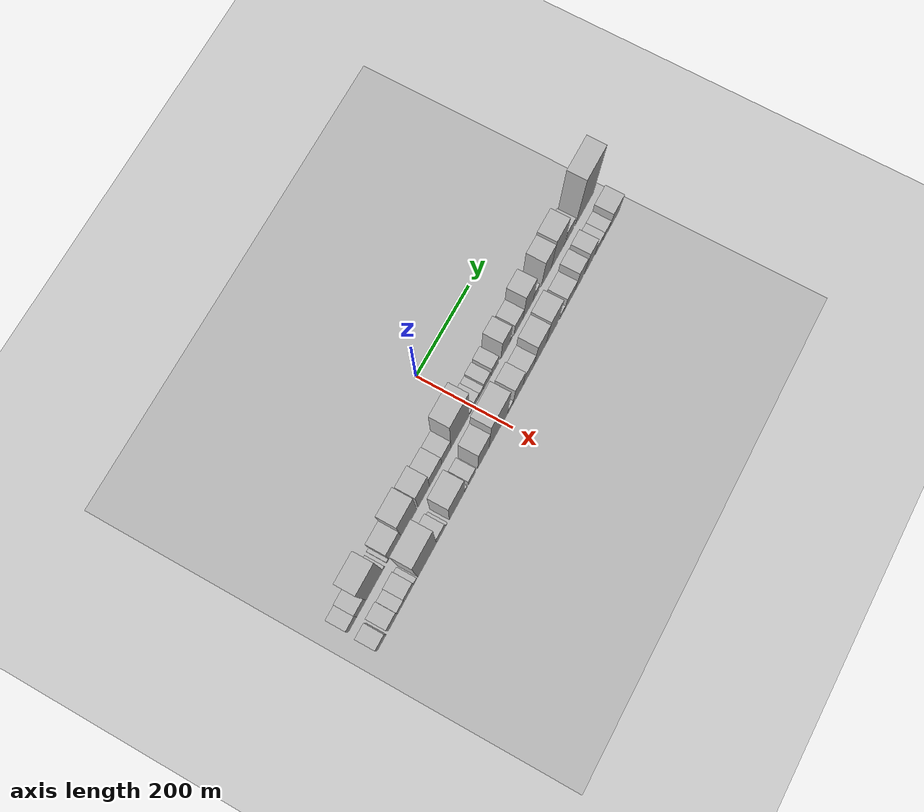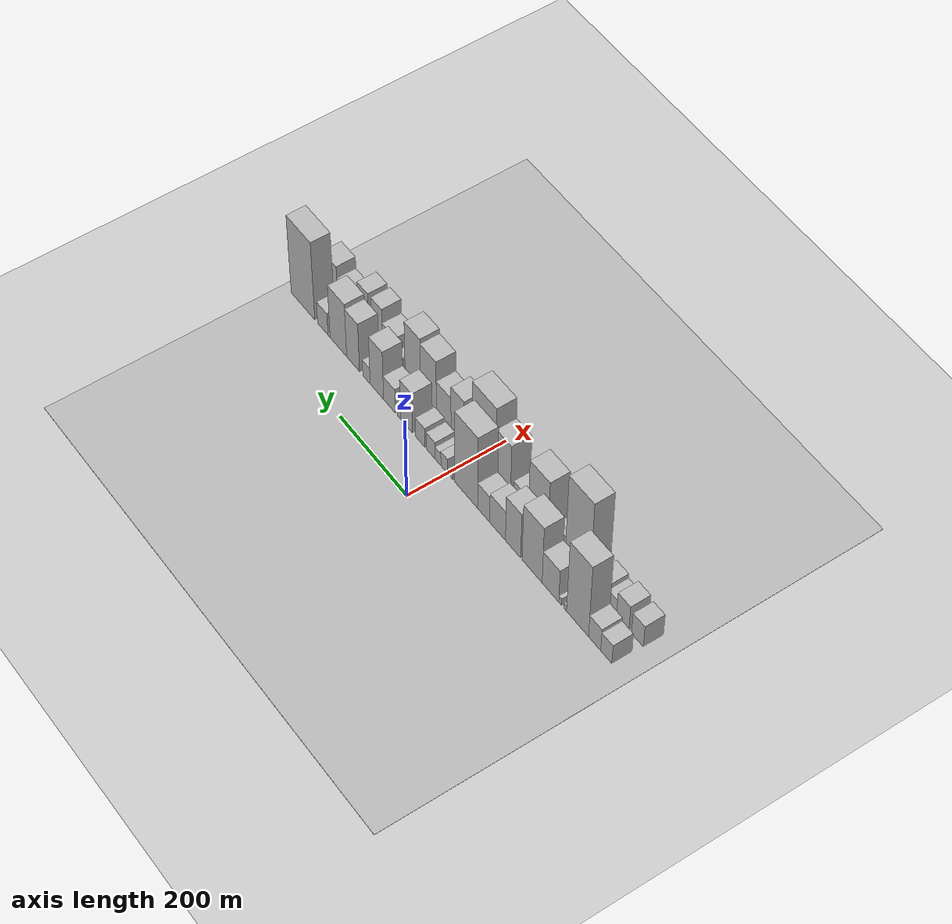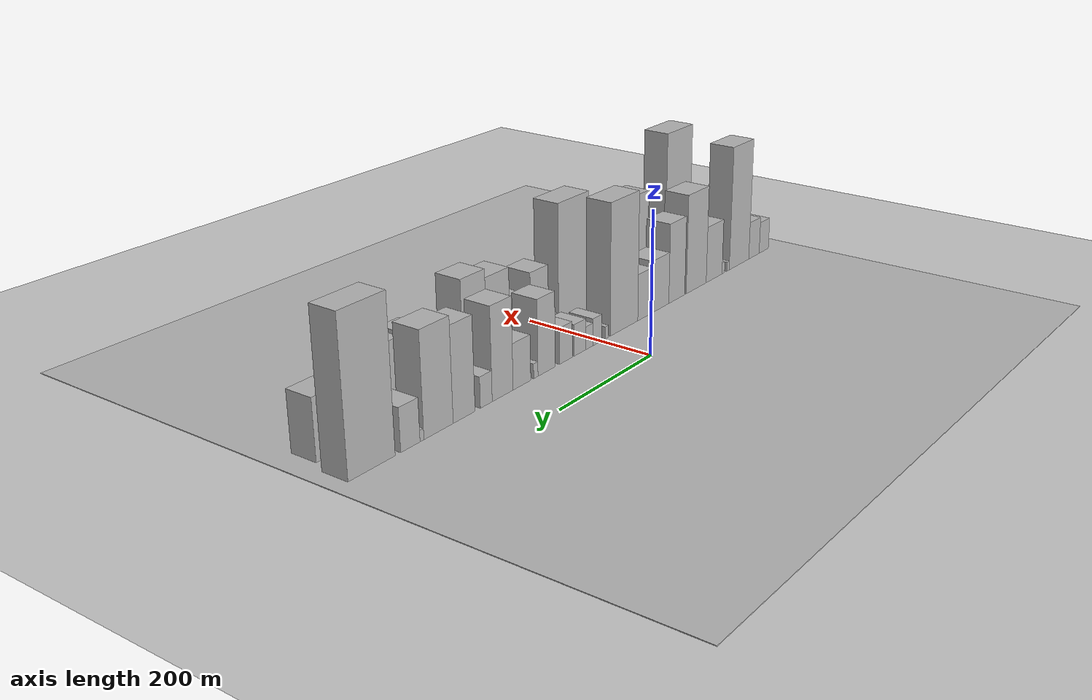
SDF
<sdf version="1.6">
 <world name="default">
  <include><name>ground_plane_1</name><uri>model://HANNAS_ground_plane</uri></include>
  <include>
   <name>ground_plane_2</name>
   <uri>model://HANNAS_ground_plane</uri>
   <pose>100 0 0  0 0 0</pose>
  </include>
  <model name="building_1">
   <static>1</static>
   <pose>100.0000 -442.2774 0 0.000000 0.000000 0.000000</pose>
   <link name="link">
    <pose>0 0 25.50 0 0 0</pose>
    <collision name="collision"><geometry><box><size>40.0000 29.4452 51.0000</size></box></geometry></collision>
    <visual name="visual">
     <cast_shadows>0</cast_shadows>
     <geometry><box><size>40.0000 29.4452 51.0000</size></box></geometry>
     <material>
      <script>
       <uri>model://HANNAS_wall/materials/scripts</uri>
       <uri>model://HANNAS_wall/materials/textures</uri>
       <name>vrc/HANNAS_wall</name>
      </script>
     </material>
    </visual>
   </link>
  </model>
  <model name="building_2">
   <static>1</static>
   <pose>100.0000 -411.2501 0 0.000000 0.000000 0.000000</pose>
   <link name="link">
    <pose>0 0 30.00 0 0 0</pose>
    <collision name="collision"><geometry><box><size>40.0000 32.6093 60.0000</size></box></geometry></collision>
    <visual name="visual">
     <cast_shadows>0</cast_shadows>
     <geometry><box><size>40.0000 32.6093 60.0000</size></box></geometry>
     <material>
      <script>
       <uri>model://HANNAS_wall/materials/scripts</uri>
       <uri>model://HANNAS_wall/materials/textures</uri>
       <name>vrc/HANNAS_wall</name>
      </script>
     </material>
    </visual>
   </link>
  </model>
  <model name="building_3">
   <static>1</static>
   <pose>100.0000 -365.2825 0 0.000000 0.000000 0.000000</pose>
   <link name="link">
    <pose>0 0 96.00 0 0 0</pose>
    <collision name="collision"><geometry><box><size>40.0000 59.3258 192.0000</size></box></geometry></collision>
    <visual name="visual">
     <cast_shadows>0</cast_shadows>
     <geometry><box><size>40.0000 59.3258 192.0000</size></box></geometry>
     <material>
      <script>
       <uri>model://HANNAS_wall/materials/scripts</uri>
       <uri>model://HANNAS_wall/materials/textures</uri>
       <name>vrc/HANNAS_wall</name>
      </script>
     </material>
    </visual>
   </link>
  </model>
  <model name="building_4">
   <static>1</static>
   <pose>100.0000 -332.2218 0 0.000000 0.000000 0.000000</pose>
   <link name="link">
    <pose>0 0 7.50 0 0 0</pose>
    <collision name="collision"><geometry><box><size>40.0000 6.7956 15.0000</size></box></geometry></collision>
    <visual name="visual">
     <cast_shadows>0</cast_shadows>
     <geometry><box><size>40.0000 6.7956 15.0000</size></box></geometry>
     <material>
      <script>
       <uri>model://HANNAS_wall/materials/scripts</uri>
       <uri>model://HANNAS_wall/materials/textures</uri>
       <name>vrc/HANNAS_wall</name>
      </script>
     </material>
    </visual>
   </link>
  </model>
  <model name="building_5">
   <static>1</static>
   <pose>100.0000 -318.0730 0 0.000000 0.000000 0.000000</pose>
   <link name="link">
    <pose>0 0 9.00 0 0 0</pose>
    <collision name="collision"><geometry><box><size>40.0000 7.5020 18.0000</size></box></geometry></collision>
    <visual name="visual">
     <cast_shadows>0</cast_shadows>
     <geometry><box><size>40.0000 7.5020 18.0000</size></box></geometry>
     <material>
      <script>
       <uri>model://HANNAS_wall/materials/scripts</uri>
       <uri>model://HANNAS_wall/materials/textures</uri>
       <name>vrc/HANNAS_wall</name>
      </script>
     </material>
    </visual>
   </link>
  </model>
  <model name="building_6">
   <static>1</static>
   <pose>100.0000 -291.5040 0 0.000000 0.000000 0.000000</pose>
   <link name="link">
    <pose>0 0 43.50 0 0 0</pose>
    <collision name="collision"><geometry><box><size>40.0000 45.6358 87.0000</size></box></geometry></collision>
    <visual name="visual">
     <cast_shadows>0</cast_shadows>
     <geometry><box><size>40.0000 45.6358 87.0000</size></box></geometry>
     <material>
      <script>
       <uri>model://HANNAS_wall/materials/scripts</uri>
       <uri>model://HANNAS_wall/materials/textures</uri>
       <name>vrc/HANNAS_wall</name>
      </script>
     </material>
    </visual>
   </link>
  </model>
  <model name="building_7">
   <static>1</static>
   <pose>100.0000 -240.9183 0 0.000000 0.000000 0.000000</pose>
   <link name="link">
    <pose>0 0 75.00 0 0 0</pose>
    <collision name="collision"><geometry><box><size>40.0000 55.5356 150.0000</size></box></geometry></collision>
    <visual name="visual">
     <cast_shadows>0</cast_shadows>
     <geometry><box><size>40.0000 55.5356 150.0000</size></box></geometry>
     <material>
      <script>
       <uri>model://HANNAS_wall/materials/scripts</uri>
       <uri>model://HANNAS_wall/materials/textures</uri>
       <name>vrc/HANNAS_wall</name>
      </script>
     </material>
    </visual>
   </link>
  </model>
  <model name="building_8">
   <static>1</static>
   <pose>100.0000 -187.8410 0 0.000000 0.000000 0.000000</pose>
   <link name="link">
    <pose>0 0 60.00 0 0 0</pose>
    <collision name="collision"><geometry><box><size>40.0000 42.6190 120.0000</size></box></geometry></collision>
    <visual name="visual">
     <cast_shadows>0</cast_shadows>
     <geometry><box><size>40.0000 42.6190 120.0000</size></box></geometry>
     <material>
      <script>
       <uri>model://HANNAS_wall/materials/scripts</uri>
       <uri>model://HANNAS_wall/materials/textures</uri>
       <name>vrc/HANNAS_wall</name>
      </script>
     </material>
    </visual>
   </link>
  </model>
  <model name="building_9">
   <static>1</static>
   <pose>100.0000 -144.2363 0 0.000000 0.000000 0.000000</pose>
   <link name="link">
    <pose>0 0 39.00 0 0 0</pose>
    <collision name="collision"><geometry><box><size>40.0000 44.5905 78.0000</size></box></geometry></collision>
    <visual name="visual">
     <cast_shadows>0</cast_shadows>
     <geometry><box><size>40.0000 44.5905 78.0000</size></box></geometry>
     <material>
      <script>
       <uri>model://HANNAS_wall/materials/scripts</uri>
       <uri>model://HANNAS_wall/materials/textures</uri>
       <name>vrc/HANNAS_wall</name>
      </script>
     </material>
    </visual>
   </link>
  </model>
  <model name="building_10">
   <static>1</static>
   <pose>100.0000 -104.6108 0 0.000000 0.000000 0.000000</pose>
   <link name="link">
    <pose>0 0 34.50 0 0 0</pose>
    <collision name="collision"><geometry><box><size>40.0000 34.6603 69.0000</size></box></geometry></collision>
    <visual name="visual">
     <cast_shadows>0</cast_shadows>
     <geometry><box><size>40.0000 34.6603 69.0000</size></box></geometry>
     <material>
      <script>
       <uri>model://HANNAS_wall/materials/scripts</uri>
       <uri>model://HANNAS_wall/materials/textures</uri>
       <name>vrc/HANNAS_wall</name>
      </script>
     </material>
    </visual>
   </link>
  </model>
  <model name="building_11">
   <static>1</static>
   <pose>100.0000 -54.0265 0 0.000000 0.000000 0.000000</pose>
   <link name="link">
    <pose>0 0 94.50 0 0 0</pose>
    <collision name="collision"><geometry><box><size>40.0000 66.5083 189.0000</size></box></geometry></collision>
    <visual name="visual">
     <cast_shadows>0</cast_shadows>
     <geometry><box><size>40.0000 66.5083 189.0000</size></box></geometry>
     <material>
      <script>
       <uri>model://HANNAS_wall/materials/scripts</uri>
       <uri>model://HANNAS_wall/materials/textures</uri>
       <name>vrc/HANNAS_wall</name>
      </script>
     </material>
    </visual>
   </link>
  </model>
  <model name="building_12">
   <static>1</static>
   <pose>100.0000 -12.9108 0 0.000000 0.000000 0.000000</pose>
   <link name="link">
    <pose>0 0 9.00 0 0 0</pose>
    <collision name="collision"><geometry><box><size>40.0000 7.7230 18.0000</size></box></geometry></collision>
    <visual name="visual">
     <cast_shadows>0</cast_shadows>
     <geometry><box><size>40.0000 7.7230 18.0000</size></box></geometry>
     <material>
      <script>
       <uri>model://HANNAS_wall/materials/scripts</uri>
       <uri>model://HANNAS_wall/materials/textures</uri>
       <name>vrc/HANNAS_wall</name>
      </script>
     </material>
    </visual>
   </link>
  </model>
  <model name="building_13">
   <static>1</static>
   <pose>100.0000 8.8898 0 0.000000 0.000000 0.000000</pose>
   <link name="link">
    <pose>0 0 19.50 0 0 0</pose>
    <collision name="collision"><geometry><box><size>40.0000 19.8781 39.0000</size></box></geometry></collision>
    <visual name="visual">
     <cast_shadows>0</cast_shadows>
     <geometry><box><size>40.0000 19.8781 39.0000</size></box></geometry>
     <material>
      <script>
       <uri>model://HANNAS_wall/materials/scripts</uri>
       <uri>model://HANNAS_wall/materials/textures</uri>
       <name>vrc/HANNAS_wall</name>
      </script>
     </material>
    </visual>
   </link>
  </model>
  <model name="building_14">
   <static>1</static>
   <pose>100.0000 27.2076 0 0.000000 0.000000 0.000000</pose>
   <link name="link">
    <pose>0 0 16.50 0 0 0</pose>
    <collision name="collision"><geometry><box><size>40.0000 16.7574 33.0000</size></box></geometry></collision>
    <visual name="visual">
     <cast_shadows>0</cast_shadows>
     <geometry><box><size>40.0000 16.7574 33.0000</size></box></geometry>
     <material>
      <script>
       <uri>model://HANNAS_wall/materials/scripts</uri>
       <uri>model://HANNAS_wall/materials/textures</uri>
       <name>vrc/HANNAS_wall</name>
      </script>
     </material>
    </visual>
   </link>
  </model>
  <model name="building_15">
   <static>1</static>
   <pose>100.0000 48.6235 0 0.000000 0.000000 0.000000</pose>
   <link name="link">
    <pose>0 0 22.50 0 0 0</pose>
    <collision name="collision"><geometry><box><size>40.0000 26.0744 45.0000</size></box></geometry></collision>
    <visual name="visual">
     <cast_shadows>0</cast_shadows>
     <geometry><box><size>40.0000 26.0744 45.0000</size></box></geometry>
     <material>
      <script>
       <uri>model://HANNAS_wall/materials/scripts</uri>
       <uri>model://HANNAS_wall/materials/textures</uri>
       <name>vrc/HANNAS_wall</name>
      </script>
     </material>
    </visual>
   </link>
  </model>
  <model name="building_16">
   <static>1</static>
   <pose>100.0000 79.5905 0 0.000000 0.000000 0.000000</pose>
   <link name="link">
    <pose>0 0 25.50 0 0 0</pose>
    <collision name="collision"><geometry><box><size>40.0000 27.8595 51.0000</size></box></geometry></collision>
    <visual name="visual">
     <cast_shadows>0</cast_shadows>
     <geometry><box><size>40.0000 27.8595 51.0000</size></box></geometry>
     <material>
      <script>
       <uri>model://HANNAS_wall/materials/scripts</uri>
       <uri>model://HANNAS_wall/materials/textures</uri>
       <name>vrc/HANNAS_wall</name>
      </script>
     </material>
    </visual>
   </link>
  </model>
  <model name="building_17">
   <static>1</static>
   <pose>100.0000 120.6960 0 0.000000 0.000000 0.000000</pose>
   <link name="link">
    <pose>0 0 52.50 0 0 0</pose>
    <collision name="collision"><geometry><box><size>40.0000 36.3516 105.0000</size></box></geometry></collision>
    <visual name="visual">
     <cast_shadows>0</cast_shadows>
     <geometry><box><size>40.0000 36.3516 105.0000</size></box></geometry>
     <material>
      <script>
       <uri>model://HANNAS_wall/materials/scripts</uri>
       <uri>model://HANNAS_wall/materials/textures</uri>
       <name>vrc/HANNAS_wall</name>
      </script>
     </material>
    </visual>
   </link>
  </model>
  <model name="building_18">
   <static>1</static>
   <pose>100.0000 143.3146 0 0.000000 0.000000 0.000000</pose>
   <link name="link">
    <pose>0 0 10.50 0 0 0</pose>
    <collision name="collision"><geometry><box><size>40.0000 8.8856 21.0000</size></box></geometry></collision>
    <visual name="visual">
     <cast_shadows>0</cast_shadows>
     <geometry><box><size>40.0000 8.8856 21.0000</size></box></geometry>
     <material>
      <script>
       <uri>model://HANNAS_wall/materials/scripts</uri>
       <uri>model://HANNAS_wall/materials/textures</uri>
       <name>vrc/HANNAS_wall</name>
      </script>
     </material>
    </visual>
   </link>
  </model>
  <model name="building_19">
   <static>1</static>
   <pose>100.0000 171.5417 0 0.000000 0.000000 0.000000</pose>
   <link name="link">
    <pose>0 0 31.50 0 0 0</pose>
    <collision name="collision"><geometry><box><size>40.0000 35.5687 63.0000</size></box></geometry></collision>
    <visual name="visual">
     <cast_shadows>0</cast_shadows>
     <geometry><box><size>40.0000 35.5687 63.0000</size></box></geometry>
     <material>
      <script>
       <uri>model://HANNAS_wall/materials/scripts</uri>
       <uri>model://HANNAS_wall/materials/textures</uri>
       <name>vrc/HANNAS_wall</name>
      </script>
     </material>
    </visual>
   </link>
  </model>
  <model name="building_20">
   <static>1</static>
   <pose>100.0000 209.6846 0 0.000000 0.000000 0.000000</pose>
   <link name="link">
    <pose>0 0 63.00 0 0 0</pose>
    <collision name="collision"><geometry><box><size>40.0000 40.7171 126.0000</size></box></geometry></collision>
    <visual name="visual">
     <cast_shadows>0</cast_shadows>
     <geometry><box><size>40.0000 40.7171 126.0000</size></box></geometry>
     <material>
      <script>
       <uri>model://HANNAS_wall/materials/scripts</uri>
       <uri>model://HANNAS_wall/materials/textures</uri>
       <name>vrc/HANNAS_wall</name>
      </script>
     </material>
    </visual>
   </link>
  </model>
  <model name="building_21">
   <static>1</static>
   <pose>100.0000 241.2630 0 0.000000 0.000000 0.000000</pose>
   <link name="link">
    <pose>0 0 21.00 0 0 0</pose>
    <collision name="collision"><geometry><box><size>40.0000 22.4398 42.0000</size></box></geometry></collision>
    <visual name="visual">
     <cast_shadows>0</cast_shadows>
     <geometry><box><size>40.0000 22.4398 42.0000</size></box></geometry>
     <material>
      <script>
       <uri>model://HANNAS_wall/materials/scripts</uri>
       <uri>model://HANNAS_wall/materials/textures</uri>
       <name>vrc/HANNAS_wall</name>
      </script>
     </material>
    </visual>
   </link>
  </model>
  <model name="building_22">
   <static>1</static>
   <pose>100.0000 282.4394 0 0.000000 0.000000 0.000000</pose>
   <link name="link">
    <pose>0 0 63.00 0 0 0</pose>
    <collision name="collision"><geometry><box><size>40.0000 39.9129 126.0000</size></box></geometry></collision>
    <visual name="visual">
     <cast_shadows>0</cast_shadows>
     <geometry><box><size>40.0000 39.9129 126.0000</size></box></geometry>
     <material>
      <script>
       <uri>model://HANNAS_wall/materials/scripts</uri>
       <uri>model://HANNAS_wall/materials/textures</uri>
       <name>vrc/HANNAS_wall</name>
      </script>
     </material>
    </visual>
   </link>
  </model>
  <model name="building_23">
   <static>1</static>
   <pose>100.0000 328.1053 0 0.000000 0.000000 0.000000</pose>
   <link name="link">
    <pose>0 0 69.00 0 0 0</pose>
    <collision name="collision"><geometry><box><size>40.0000 51.4190 138.0000</size></box></geometry></collision>
    <visual name="visual">
     <cast_shadows>0</cast_shadows>
     <geometry><box><size>40.0000 51.4190 138.0000</size></box></geometry>
     <material>
      <script>
       <uri>model://HANNAS_wall/materials/scripts</uri>
       <uri>model://HANNAS_wall/materials/textures</uri>
       <name>vrc/HANNAS_wall</name>
      </script>
     </material>
    </visual>
   </link>
  </model>
  <model name="building_24">
   <static>1</static>
   <pose>100.0000 357.1267 0 0.000000 0.000000 0.000000</pose>
   <link name="link">
    <pose>0 0 7.50 0 0 0</pose>
    <collision name="collision"><geometry><box><size>40.0000 6.6239 15.0000</size></box></geometry></collision>
    <visual name="visual">
     <cast_shadows>0</cast_shadows>
     <geometry><box><size>40.0000 6.6239 15.0000</size></box></geometry>
     <material>
      <script>
       <uri>model://HANNAS_wall/materials/scripts</uri>
       <uri>model://HANNAS_wall/materials/textures</uri>
       <name>vrc/HANNAS_wall</name>
      </script>
     </material>
    </visual>
   </link>
  </model>
  <model name="building_25">
   <static>1</static>
   <pose>100.0000 376.6841 0 0.000000 0.000000 0.000000</pose>
   <link name="link">
    <pose>0 0 28.50 0 0 0</pose>
    <collision name="collision"><geometry><box><size>40.0000 32.4909 57.0000</size></box></geometry></collision>
    <visual name="visual">
     <cast_shadows>0</cast_shadows>
     <geometry><box><size>40.0000 32.4909 57.0000</size></box></geometry>
     <material>
      <script>
       <uri>model://HANNAS_wall/materials/scripts</uri>
       <uri>model://HANNAS_wall/materials/textures</uri>
       <name>vrc/HANNAS_wall</name>
      </script>
     </material>
    </visual>
   </link>
  </model>
  <model name="building_26">
   <static>1</static>
   <pose>100.0000 439.3706 0 0.000000 0.000000 0.000000</pose>
   <link name="link">
    <pose>0 0 100.50 0 0 0</pose>
    <collision name="collision"><geometry><box><size>40.0000 74.8822 201.0000</size></box></geometry></collision>
    <visual name="visual">
     <cast_shadows>0</cast_shadows>
     <geometry><box><size>40.0000 74.8822 201.0000</size></box></geometry>
     <material>
      <script>
       <uri>model://HANNAS_wall/materials/scripts</uri>
       <uri>model://HANNAS_wall/materials/textures</uri>
       <name>vrc/HANNAS_wall</name>
      </script>
     </material>
    </visual>
   </link>
  </model>
  <model name="building_27">
   <static>1</static>
   <pose>160.0000 -444.4021 0 0.000000 0.000000 0.000000</pose>
   <link name="link">
    <pose>0 0 28.50 0 0 0</pose>
    <collision name="collision"><geometry><box><size>40.0000 31.1958 57.0000</size></box></geometry></collision>
    <visual name="visual">
     <cast_shadows>0</cast_shadows>
     <geometry><box><size>40.0000 31.1958 57.0000</size></box></geometry>
     <material>
      <script>
       <uri>model://HANNAS_wall/materials/scripts</uri>
       <uri>model://HANNAS_wall/materials/textures</uri>
       <name>vrc/HANNAS_wall</name>
      </script>
     </material>
    </visual>
   </link>
  </model>
  <model name="building_28">
   <static>1</static>
   <pose>160.0000 -405.2293 0 0.000000 0.000000 0.000000</pose>
   <link name="link">
    <pose>0 0 33.00 0 0 0</pose>
    <collision name="collision"><geometry><box><size>40.0000 33.1497 66.0000</size></box></geometry></collision>
    <visual name="visual">
     <cast_shadows>0</cast_shadows>
     <geometry><box><size>40.0000 33.1497 66.0000</size></box></geometry>
     <material>
      <script>
       <uri>model://HANNAS_wall/materials/scripts</uri>
       <uri>model://HANNAS_wall/materials/textures</uri>
       <name>vrc/HANNAS_wall</name>
      </script>
     </material>
    </visual>
   </link>
  </model>
  <model name="building_29">
   <static>1</static>
   <pose>160.0000 -376.4610 0 0.000000 0.000000 0.000000</pose>
   <link name="link">
    <pose>0 0 22.50 0 0 0</pose>
    <collision name="collision"><geometry><box><size>40.0000 24.3870 45.0000</size></box></geometry></collision>
    <visual name="visual">
     <cast_shadows>0</cast_shadows>
     <geometry><box><size>40.0000 24.3870 45.0000</size></box></geometry>
     <material>
      <script>
       <uri>model://HANNAS_wall/materials/scripts</uri>
       <uri>model://HANNAS_wall/materials/textures</uri>
       <name>vrc/HANNAS_wall</name>
      </script>
     </material>
    </visual>
   </link>
  </model>
  <model name="building_30">
   <static>1</static>
   <pose>160.0000 -347.7312 0 0.000000 0.000000 0.000000</pose>
   <link name="link">
    <pose>0 0 28.50 0 0 0</pose>
    <collision name="collision"><geometry><box><size>40.0000 33.0727 57.0000</size></box></geometry></collision>
    <visual name="visual">
     <cast_shadows>0</cast_shadows>
     <geometry><box><size>40.0000 33.0727 57.0000</size></box></geometry>
     <material>
      <script>
       <uri>model://HANNAS_wall/materials/scripts</uri>
       <uri>model://HANNAS_wall/materials/textures</uri>
       <name>vrc/HANNAS_wall</name>
      </script>
     </material>
    </visual>
   </link>
  </model>
  <model name="building_31">
   <static>1</static>
   <pose>160.0000 -325.4053 0 0.000000 0.000000 0.000000</pose>
   <link name="link">
    <pose>0 0 12.00 0 0 0</pose>
    <collision name="collision"><geometry><box><size>40.0000 11.5790 24.0000</size></box></geometry></collision>
    <visual name="visual">
     <cast_shadows>0</cast_shadows>
     <geometry><box><size>40.0000 11.5790 24.0000</size></box></geometry>
     <material>
      <script>
       <uri>model://HANNAS_wall/materials/scripts</uri>
       <uri>model://HANNAS_wall/materials/textures</uri>
       <name>vrc/HANNAS_wall</name>
      </script>
     </material>
    </visual>
   </link>
  </model>
  <model name="building_32">
   <static>1</static>
   <pose>160.0000 -282.8575 0 0.000000 0.000000 0.000000</pose>
   <link name="link">
    <pose>0 0 111.00 0 0 0</pose>
    <collision name="collision"><geometry><box><size>40.0000 67.5168 222.0000</size></box></geometry></collision>
    <visual name="visual">
     <cast_shadows>0</cast_shadows>
     <geometry><box><size>40.0000 67.5168 222.0000</size></box></geometry>
     <material>
      <script>
       <uri>model://HANNAS_wall/materials/scripts</uri>
       <uri>model://HANNAS_wall/materials/textures</uri>
       <name>vrc/HANNAS_wall</name>
      </script>
     </material>
    </visual>
   </link>
  </model>
  <model name="building_33">
   <static>1</static>
   <pose>160.0000 -233.5237 0 0.000000 0.000000 0.000000</pose>
   <link name="link">
    <pose>0 0 28.50 0 0 0</pose>
    <collision name="collision"><geometry><box><size>40.0000 31.1507 57.0000</size></box></geometry></collision>
    <visual name="visual">
     <cast_shadows>0</cast_shadows>
     <geometry><box><size>40.0000 31.1507 57.0000</size></box></geometry>
     <material>
      <script>
       <uri>model://HANNAS_wall/materials/scripts</uri>
       <uri>model://HANNAS_wall/materials/textures</uri>
       <name>vrc/HANNAS_wall</name>
      </script>
     </material>
    </visual>
   </link>
  </model>
  <model name="building_34">
   <static>1</static>
   <pose>160.0000 -211.9093 0 0.000000 0.000000 0.000000</pose>
   <link name="link">
    <pose>0 0 7.50 0 0 0</pose>
    <collision name="collision"><geometry><box><size>40.0000 6.0781 15.0000</size></box></geometry></collision>
    <visual name="visual">
     <cast_shadows>0</cast_shadows>
     <geometry><box><size>40.0000 6.0781 15.0000</size></box></geometry>
     <material>
      <script>
       <uri>model://HANNAS_wall/materials/scripts</uri>
       <uri>model://HANNAS_wall/materials/textures</uri>
       <name>vrc/HANNAS_wall</name>
      </script>
     </material>
    </visual>
   </link>
  </model>
  <model name="building_35">
   <static>1</static>
   <pose>160.0000 -174.3099 0 0.000000 0.000000 0.000000</pose>
   <link name="link">
    <pose>0 0 75.00 0 0 0</pose>
    <collision name="collision"><geometry><box><size>40.0000 55.1208 150.0000</size></box></geometry></collision>
    <visual name="visual">
     <cast_shadows>0</cast_shadows>
     <geometry><box><size>40.0000 55.1208 150.0000</size></box></geometry>
     <material>
      <script>
       <uri>model://HANNAS_wall/materials/scripts</uri>
       <uri>model://HANNAS_wall/materials/textures</uri>
       <name>vrc/HANNAS_wall</name>
      </script>
     </material>
    </visual>
   </link>
  </model>
  <model name="building_36">
   <static>1</static>
   <pose>160.0000 -141.5744 0 0.000000 0.000000 0.000000</pose>
   <link name="link">
    <pose>0 0 12.00 0 0 0</pose>
    <collision name="collision"><geometry><box><size>40.0000 10.3501 24.0000</size></box></geometry></collision>
    <visual name="visual">
     <cast_shadows>0</cast_shadows>
     <geometry><box><size>40.0000 10.3501 24.0000</size></box></geometry>
     <material>
      <script>
       <uri>model://HANNAS_wall/materials/scripts</uri>
       <uri>model://HANNAS_wall/materials/textures</uri>
       <name>vrc/HANNAS_wall</name>
      </script>
     </material>
    </visual>
   </link>
  </model>
  <model name="building_37">
   <static>1</static>
   <pose>160.0000 -118.4916 0 0.000000 0.000000 0.000000</pose>
   <link name="link">
    <pose>0 0 24.00 0 0 0</pose>
    <collision name="collision"><geometry><box><size>40.0000 27.8155 48.0000</size></box></geometry></collision>
    <visual name="visual">
     <cast_shadows>0</cast_shadows>
     <geometry><box><size>40.0000 27.8155 48.0000</size></box></geometry>
     <material>
      <script>
       <uri>model://HANNAS_wall/materials/scripts</uri>
       <uri>model://HANNAS_wall/materials/textures</uri>
       <name>vrc/HANNAS_wall</name>
      </script>
     </material>
    </visual>
   </link>
  </model>
  <model name="building_38">
   <static>1</static>
   <pose>160.0000 -75.3518 0 0.000000 0.000000 0.000000</pose>
   <link name="link">
    <pose>0 0 66.00 0 0 0</pose>
    <collision name="collision"><geometry><box><size>40.0000 42.4642 132.0000</size></box></geometry></collision>
    <visual name="visual">
     <cast_shadows>0</cast_shadows>
     <geometry><box><size>40.0000 42.4642 132.0000</size></box></geometry>
     <material>
      <script>
       <uri>model://HANNAS_wall/materials/scripts</uri>
       <uri>model://HANNAS_wall/materials/textures</uri>
       <name>vrc/HANNAS_wall</name>
      </script>
     </material>
    </visual>
   </link>
  </model>
  <model name="building_39">
   <static>1</static>
   <pose>160.0000 -19.5632 0 0.000000 0.000000 0.000000</pose>
   <link name="link">
    <pose>0 0 93.00 0 0 0</pose>
    <collision name="collision"><geometry><box><size>40.0000 69.1130 186.0000</size></box></geometry></collision>
    <visual name="visual">
     <cast_shadows>0</cast_shadows>
     <geometry><box><size>40.0000 69.1130 186.0000</size></box></geometry>
     <material>
      <script>
       <uri>model://HANNAS_wall/materials/scripts</uri>
       <uri>model://HANNAS_wall/materials/textures</uri>
       <name>vrc/HANNAS_wall</name>
      </script>
     </material>
    </visual>
   </link>
  </model>
  <model name="building_40">
   <static>1</static>
   <pose>160.0000 27.7079 0 0.000000 0.000000 0.000000</pose>
   <link name="link">
    <pose>0 0 16.50 0 0 0</pose>
    <collision name="collision"><geometry><box><size>40.0000 19.4291 33.0000</size></box></geometry></collision>
    <visual name="visual">
     <cast_shadows>0</cast_shadows>
     <geometry><box><size>40.0000 19.4291 33.0000</size></box></geometry>
     <material>
      <script>
       <uri>model://HANNAS_wall/materials/scripts</uri>
       <uri>model://HANNAS_wall/materials/textures</uri>
       <name>vrc/HANNAS_wall</name>
      </script>
     </material>
    </visual>
   </link>
  </model>
  <model name="building_41">
   <static>1</static>
   <pose>160.0000 56.6784 0 0.000000 0.000000 0.000000</pose>
   <link name="link">
    <pose>0 0 54.00 0 0 0</pose>
    <collision name="collision"><geometry><box><size>40.0000 38.5120 108.0000</size></box></geometry></collision>
    <visual name="visual">
     <cast_shadows>0</cast_shadows>
     <geometry><box><size>40.0000 38.5120 108.0000</size></box></geometry>
     <material>
      <script>
       <uri>model://HANNAS_wall/materials/scripts</uri>
       <uri>model://HANNAS_wall/materials/textures</uri>
       <name>vrc/HANNAS_wall</name>
      </script>
     </material>
    </visual>
   </link>
  </model>
  <model name="building_42">
   <static>1</static>
   <pose>160.0000 97.6071 0 0.000000 0.000000 0.000000</pose>
   <link name="link">
    <pose>0 0 39.00 0 0 0</pose>
    <collision name="collision"><geometry><box><size>40.0000 43.3453 78.0000</size></box></geometry></collision>
    <visual name="visual">
     <cast_shadows>0</cast_shadows>
     <geometry><box><size>40.0000 43.3453 78.0000</size></box></geometry>
     <material>
      <script>
       <uri>model://HANNAS_wall/materials/scripts</uri>
       <uri>model://HANNAS_wall/materials/textures</uri>
       <name>vrc/HANNAS_wall</name>
      </script>
     </material>
    </visual>
   </link>
  </model>
  <model name="building_43">
   <static>1</static>
   <pose>160.0000 142.8385 0 0.000000 0.000000 0.000000</pose>
   <link name="link">
    <pose>0 0 64.50 0 0 0</pose>
    <collision name="collision"><geometry><box><size>40.0000 47.1174 129.0000</size></box></geometry></collision>
    <visual name="visual">
     <cast_shadows>0</cast_shadows>
     <geometry><box><size>40.0000 47.1174 129.0000</size></box></geometry>
     <material>
      <script>
       <uri>model://HANNAS_wall/materials/scripts</uri>
       <uri>model://HANNAS_wall/materials/textures</uri>
       <name>vrc/HANNAS_wall</name>
      </script>
     </material>
    </visual>
   </link>
  </model>
  <model name="building_44">
   <static>1</static>
   <pose>160.0000 189.5997 0 0.000000 0.000000 0.000000</pose>
   <link name="link">
    <pose>0 0 70.50 0 0 0</pose>
    <collision name="collision"><geometry><box><size>40.0000 46.4051 141.0000</size></box></geometry></collision>
    <visual name="visual">
     <cast_shadows>0</cast_shadows>
     <geometry><box><size>40.0000 46.4051 141.0000</size></box></geometry>
     <material>
      <script>
       <uri>model://HANNAS_wall/materials/scripts</uri>
       <uri>model://HANNAS_wall/materials/textures</uri>
       <name>vrc/HANNAS_wall</name>
      </script>
     </material>
    </visual>
   </link>
  </model>
  <model name="building_45">
   <static>1</static>
   <pose>160.0000 231.8771 0 0.000000 0.000000 0.000000</pose>
   <link name="link">
    <pose>0 0 16.50 0 0 0</pose>
    <collision name="collision"><geometry><box><size>40.0000 18.1495 33.0000</size></box></geometry></collision>
    <visual name="visual">
     <cast_shadows>0</cast_shadows>
     <geometry><box><size>40.0000 18.1495 33.0000</size></box></geometry>
     <material>
      <script>
       <uri>model://HANNAS_wall/materials/scripts</uri>
       <uri>model://HANNAS_wall/materials/textures</uri>
       <name>vrc/HANNAS_wall</name>
      </script>
     </material>
    </visual>
   </link>
  </model>
  <model name="building_46">
   <static>1</static>
   <pose>160.0000 261.1312 0 0.000000 0.000000 0.000000</pose>
   <link name="link">
    <pose>0 0 34.50 0 0 0</pose>
    <collision name="collision"><geometry><box><size>40.0000 40.3588 69.0000</size></box></geometry></collision>
    <visual name="visual">
     <cast_shadows>0</cast_shadows>
     <geometry><box><size>40.0000 40.3588 69.0000</size></box></geometry>
     <material>
      <script>
       <uri>model://HANNAS_wall/materials/scripts</uri>
       <uri>model://HANNAS_wall/materials/textures</uri>
       <name>vrc/HANNAS_wall</name>
      </script>
     </material>
    </visual>
   </link>
  </model>
  <model name="building_47">
   <static>1</static>
   <pose>160.0000 297.8207 0 0.000000 0.000000 0.000000</pose>
   <link name="link">
    <pose>0 0 52.50 0 0 0</pose>
    <collision name="collision"><geometry><box><size>40.0000 33.0201 105.0000</size></box></geometry></collision>
    <visual name="visual">
     <cast_shadows>0</cast_shadows>
     <geometry><box><size>40.0000 33.0201 105.0000</size></box></geometry>
     <material>
      <script>
       <uri>model://HANNAS_wall/materials/scripts</uri>
       <uri>model://HANNAS_wall/materials/textures</uri>
       <name>vrc/HANNAS_wall</name>
      </script>
     </material>
    </visual>
   </link>
  </model>
  <model name="building_48">
   <static>1</static>
   <pose>160.0000 339.7934 0 0.000000 0.000000 0.000000</pose>
   <link name="link">
    <pose>0 0 52.50 0 0 0</pose>
    <collision name="collision"><geometry><box><size>40.0000 32.9252 105.0000</size></box></geometry></collision>
    <visual name="visual">
     <cast_shadows>0</cast_shadows>
     <geometry><box><size>40.0000 32.9252 105.0000</size></box></geometry>
     <material>
      <script>
       <uri>model://HANNAS_wall/materials/scripts</uri>
       <uri>model://HANNAS_wall/materials/textures</uri>
       <name>vrc/HANNAS_wall</name>
      </script>
     </material>
    </visual>
   </link>
  </model>
  <model name="building_49">
   <static>1</static>
   <pose>160.0000 380.3227 0 0.000000 0.000000 0.000000</pose>
   <link name="link">
    <pose>0 0 25.50 0 0 0</pose>
    <collision name="collision"><geometry><box><size>40.0000 30.1335 51.0000</size></box></geometry></collision>
    <visual name="visual">
     <cast_shadows>0</cast_shadows>
     <geometry><box><size>40.0000 30.1335 51.0000</size></box></geometry>
     <material>
      <script>
       <uri>model://HANNAS_wall/materials/scripts</uri>
       <uri>model://HANNAS_wall/materials/textures</uri>
       <name>vrc/HANNAS_wall</name>
      </script>
     </material>
    </visual>
   </link>
  </model>
  <model name="building_50">
   <static>1</static>
   <pose>160.0000 408.6952 0 0.000000 0.000000 0.000000</pose>
   <link name="link">
    <pose>0 0 25.50 0 0 0</pose>
    <collision name="collision"><geometry><box><size>40.0000 26.6115 51.0000</size></box></geometry></collision>
    <visual name="visual">
     <cast_shadows>0</cast_shadows>
     <geometry><box><size>40.0000 26.6115 51.0000</size></box></geometry>
     <material>
      <script>
       <uri>model://HANNAS_wall/materials/scripts</uri>
       <uri>model://HANNAS_wall/materials/textures</uri>
       <name>vrc/HANNAS_wall</name>
      </script>
     </material>
    </visual>
   </link>
  </model>
  <model name="building_51">
   <static>1</static>
   <pose>160.0000 443.8825 0 0.000000 0.000000 0.000000</pose>
   <link name="link">
    <pose>0 0 40.50 0 0 0</pose>
    <collision name="collision"><geometry><box><size>40.0000 43.7630 81.0000</size></box></geometry></collision>
    <visual name="visual">
     <cast_shadows>0</cast_shadows>
     <geometry><box><size>40.0000 43.7630 81.0000</size></box></geometry>
     <material>
      <script>
       <uri>model://HANNAS_wall/materials/scripts</uri>
       <uri>model://HANNAS_wall/materials/textures</uri>
       <name>vrc/HANNAS_wall</name>
      </script>
     </material>
    </visual>
   </link>
  </model>
 </world>
</sdf>
